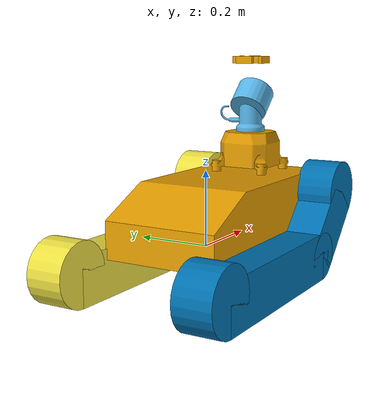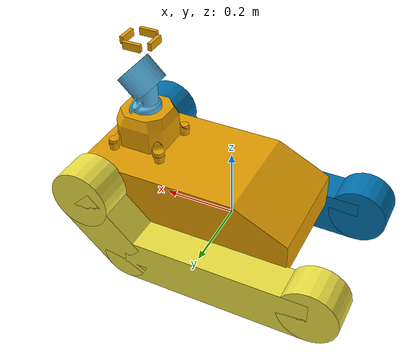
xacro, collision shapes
<?xml version='1.0' encoding='utf-8'?>
<robot name='csiro_data61_dtr_sensor_config_1' xmlns:xacro='http://ros.org/wiki/xacro'>
  <xacro:arg name="name" default="csiro_data61_dtr_sensor_config_1"/>
  <xacro:property name="robot_namespace" value="$(arg name)"/>
  <link name='${robot_namespace}/base_link'>
    <inertial>
      <origin xyz='0.074656 0 0.092426' rpy='0 -0 0'/>
      <mass value='16.1585'/>
      <inertia ixx='0.2409' ixy='-1.38499e-06' ixz='-0.0277823' iyy='0.623647' iyz='0' izz='0.605949'/>
    </inertial>
    <collision name='base_link_fixed_joint_lump__nav_base_link_collision'>
      <origin xyz='0.25 0 0.24' rpy='0 -0 0'/>
      <geometry>
        <mesh filename='package://csiro_data61_dtr_sensor_config_1/meshes/PPV4_Sim_Base.STL' scale='1 1 1'/>
      </geometry>
    </collision>
    <collision name='base_link_fixed_joint_lump__light0_collision_1'>
      <origin xyz='0.29 0 0.48' rpy='0 -0 0'/>
      <geometry>
        <box size='0.01 0.05 0.02'/>
      </geometry>
    </collision>
    <collision name='base_link_fixed_joint_lump__light1_collision_2'>
      <origin xyz='0.25 0.04 0.48' rpy='0 -0 1.5708'/>
      <geometry>
        <box size='0.01 0.05 0.02'/>
      </geometry>
    </collision>
    <collision name='base_link_fixed_joint_lump__light2_collision_3'>
      <origin xyz='0.21 0 0.48' rpy='0 -0 3.14'/>
      <geometry>
        <box size='0.01 0.05 0.02'/>
      </geometry>
    </collision>
    <collision name='base_link_fixed_joint_lump__light3_collision_4'>
      <origin xyz='0.25 -0.04 0.48' rpy='0 0 -1.5708'/>
      <geometry>
        <box size='0.01 0.05 0.02'/>
      </geometry>
    </collision>
    <collision name='base_link_fixed_joint_lump__pumpkin_chassis_collision_5'>
      <origin xyz='0 0 0' rpy='0 -0 0'/>
      <geometry>
        <mesh filename='package://csiro_data61_dtr_sensor_config_1/meshes/base_link_collision_body.STL' scale='1 1 1'/>
      </geometry>
    </collision>
    <collision name='base_link_fixed_joint_lump__pumpkin_track_visual_collision_6'>
      <origin xyz='0 0 0' rpy='0 -0 0'/>
      <geometry>
        <sphere radius='0.02'/>
      </geometry>
    </collision>
    <visual name='base_link_fixed_joint_lump__nav_base_link_visual'>
      <origin xyz='0.25 0 0.24' rpy='0 -0 0'/>
      <geometry>
        <mesh filename='package://csiro_data61_dtr_sensor_config_1/meshes/PPV4_Sim_Base.STL' scale='1 1 1'/>
      </geometry>
    </visual>
    <visual name='base_link_fixed_joint_lump__light0_visual_1'>
      <origin xyz='0.29 0 0.48' rpy='0 -0 0'/>
      <geometry>
        <box size='0.01 0.05 0.02'/>
      </geometry>
    </visual>
    <visual name='base_link_fixed_joint_lump__light1_visual_2'>
      <origin xyz='0.25 0.04 0.48' rpy='0 -0 1.5708'/>
      <geometry>
        <box size='0.01 0.05 0.02'/>
      </geometry>
    </visual>
    <visual name='base_link_fixed_joint_lump__light2_visual_3'>
      <origin xyz='0.21 0 0.48' rpy='0 -0 3.14'/>
      <geometry>
        <box size='0.01 0.05 0.02'/>
      </geometry>
    </visual>
    <visual name='base_link_fixed_joint_lump__light3_visual_4'>
      <origin xyz='0.25 -0.04 0.48' rpy='0 0 -1.5708'/>
      <geometry>
        <box size='0.01 0.05 0.02'/>
      </geometry>
    </visual>
    <visual name='base_link_fixed_joint_lump__pumpkin_chassis_visual_5'>
      <origin xyz='0 0 0' rpy='0 -0 0'/>
      <geometry>
        <mesh filename='package://csiro_data61_dtr_sensor_config_1/meshes/base_link_collision_body.STL' scale='1 1 1'/>
      </geometry>
    </visual>
    <visual name='base_link_fixed_joint_lump__pumpkin_track_visual_visual_6'>
      <origin xyz='0 0 0' rpy='0 -0 0'/>
      <geometry>
        <mesh filename='package://csiro_data61_dtr_sensor_config_1/meshes/track_assembly_left.STL' scale='1 1 1'/>
      </geometry>
    </visual>
    <visual name='base_link_fixed_joint_lump__pumpkin_track_visual_visual_7'>
      <origin xyz='0 0 0' rpy='0 -0 0'/>
      <geometry>
        <mesh filename='package://csiro_data61_dtr_sensor_config_1/meshes/track_assembly_right.STL' scale='1 1 1'/>
      </geometry>
    </visual>
  </link>
  <link name='${robot_namespace}/encoder_rotating_link'>
    <inertial>
      <origin xyz='0.004659 0 0.061904' rpy='0 -0 0'/>
      <mass value='1.328'/>
      <inertia ixx='0.00515062' ixy='-8.36136e-15' ixz='-0.000124068' iyy='0.00506893' iyz='1.36976e-13' izz='0.00258497'/>
    </inertial>
    <collision name='encoder_rotating_link_collision'>
      <origin xyz='0 0 0' rpy='0 -0 0'/>
      <geometry>
        <mesh filename='package://csiro_data61_dtr_sensor_config_1/meshes/PPV4_Sim_Laser_Assembly.STL' scale='1 1 1'/>
      </geometry>
    </collision>
    <collision name='encoder_rotating_link_fixed_joint_lump__nav_velodyne_base_link_collision_1'>
      <origin xyz='0.00735 0 0.097852' rpy='-0.785398 0 -1.5708'/>
      <geometry>
        <cylinder radius='0.0516' length='0.0717'/>
      </geometry>
    </collision>
    <visual name='encoder_rotating_link_visual'>
      <origin xyz='0 0 0' rpy='0 -0 0'/>
      <geometry>
        <mesh filename='package://csiro_data61_dtr_sensor_config_1/meshes/PPV4_Sim_Laser_Assembly.STL' scale='1 1 1'/>
      </geometry>
    </visual>
    <visual name='encoder_rotating_link_fixed_joint_lump__nav_velodyne_base_link_visual_1'>
      <origin xyz='-0.018 0 0.072503' rpy='-0.785398 0 -1.5708'/>
      <geometry>
        <mesh filename='package://csiro_data61_dtr_sensor_config_1/meshes/VLP16_base_1.dae' scale='1 1 1'/>
      </geometry>
    </visual>
    <visual name='encoder_rotating_link_fixed_joint_lump__nav_velodyne_base_link_visual_2'>
      <origin xyz='-0.018 0 0.072503' rpy='-0.785398 0 -1.5708'/>
      <geometry>
        <mesh filename='package://csiro_data61_dtr_sensor_config_1/meshes/VLP16_base_2.dae' scale='1 1 1'/>
      </geometry>
    </visual>
    <visual name='encoder_rotating_link_fixed_joint_lump__nav_velodyne_visual_3'>
      <origin xyz='-0.018 0 0.072503' rpy='-0.785398 0 -1.5708'/>
      <geometry>
        <mesh filename='package://csiro_data61_dtr_sensor_config_1/meshes/VLP16_scan.dae' scale='1 1 1'/>
      </geometry>
    </visual>
  </link>
  <link name='${robot_namespace}/nav_imu'>
    <inertial>
      <origin xyz='0.004061 0.003452 0.012413' rpy='0 -0 0'/>
      <mass value='0.3'/>
      <inertia ixx='0.000467046' ixy='-2.1049e-06' ixz='-7.55989e-06' iyy='0.000467732' iyz='-6.42649e-06' izz='0.000874443'/>
    </inertial>
    <collision name='nav_imu_collision'>
      <origin xyz='0 0 0' rpy='0 -0 0'/>
      <geometry>
        <box size='0.01 0.01 0.01'/>
      </geometry>
    </collision>
    <collision name='nav_imu_fixed_joint_lump__camera0_link_collision_1'>
      <origin xyz='0.071718 0.005178 0.01862' rpy='0 -0.261799 0'/>
      <geometry>
        <box size='0.001 0.02 0.02'/>
      </geometry>
    </collision>
    <collision name='nav_imu_fixed_joint_lump__camera1_link_collision_2'>
      <origin xyz='0.006091 0.070805 0.01862' rpy='0 -0.261799 1.5708'/>
      <geometry>
        <box size='0.001 0.02 0.02'/>
      </geometry>
    </collision>
    <collision name='nav_imu_fixed_joint_lump__camera2_link_collision_3'>
      <origin xyz='-0.059536 0.005178 0.01862' rpy='-0 -0.261799 3.14'/>
      <geometry>
        <box size='0.001 0.02 0.02'/>
      </geometry>
    </collision>
    <collision name='nav_imu_fixed_joint_lump__camera3_link_collision_4'>
      <origin xyz='0.006091 -0.06045 0.01862' rpy='0 -0.261799 -1.5708'/>
      <geometry>
        <box size='0.001 0.02 0.02'/>
      </geometry>
    </collision>
    <visual name='nav_imu_visual'>
      <origin xyz='0 0 0' rpy='0 -0 0'/>
      <geometry>
        <box size='0.01 0.01 0.01'/>
      </geometry>
    </visual>
    <visual name='nav_imu_fixed_joint_lump__camera0_link_visual_1'>
      <origin xyz='0.071718 0.005178 0.01862' rpy='0 -0.261799 0'/>
      <geometry>
        <box size='0.001 0.02 0.02'/>
      </geometry>
    </visual>
    <visual name='nav_imu_fixed_joint_lump__camera1_link_visual_2'>
      <origin xyz='0.006091 0.070805 0.01862' rpy='0 -0.261799 1.5708'/>
      <geometry>
        <box size='0.001 0.02 0.02'/>
      </geometry>
    </visual>
    <visual name='nav_imu_fixed_joint_lump__camera2_link_visual_3'>
      <origin xyz='-0.059536 0.005178 0.01862' rpy='-0 -0.261799 3.14'/>
      <geometry>
        <box size='0.001 0.02 0.02'/>
      </geometry>
    </visual>
    <visual name='nav_imu_fixed_joint_lump__camera3_link_visual_4'>
      <origin xyz='0.006091 -0.06045 0.01862' rpy='0 -0.261799 -1.5708'/>
      <geometry>
        <box size='0.001 0.02 0.02'/>
      </geometry>
    </visual>
  </link>
  <link name='${robot_namespace}/left_track'>
    <inertial>
      <origin xyz='0 0 0' rpy='0 -0 0'/>
      <mass value='10'/>
      <inertia ixx='0.04167' ixy='0' ixz='0' iyy='0.3747' iyz='0' izz='0.3500'/>
    </inertial>
    <collision name='left_02_wheel_collision'>
      <origin xyz='0.1975 0 -0.04' rpy='1.5708 -0 0'/>
      <geometry>
        <cylinder radius='0.064' length='0.1'/>
      </geometry>
    </collision>
    <collision name='left_05_wheel_collision'>
      <origin xyz='0.322 0 0.117' rpy='1.5708 -0 0'/>
      <geometry>
        <cylinder radius='0.084' length='0.1'/>
      </geometry>
    </collision>
    <collision name='left_14_wheel_collision'>
      <origin xyz='-0.32 0 -0.02' rpy='1.5708 -0 0'/>
      <geometry>
        <cylinder radius='0.084' length='0.1'/>
      </geometry>
    </collision>
    <collision name='left_bottom_box_collision'>
      <origin xyz='-0.06175 0 -0.04' rpy='0 0 0'/>
      <geometry>
        <box size='0.5175 0.1 0.128'/>
      </geometry>
    </collision>
    <collision name='left_front_box_collision'>
      <origin xyz='0.267 0 0.0322' rpy='0 -0.8011 0'/>
      <geometry>
        <box size='0.20 0.1 0.128'/>
      </geometry>
    </collision>
  </link>
  <joint name='left_track_j' type='fixed'>
    <origin xyz='0 0.2 0' rpy='0 0 0'/>
    <parent link='${robot_namespace}/base_link'/>
    <child link='${robot_namespace}/left_track'/>
  </joint>
  <link name='${robot_namespace}/right_track'>
    <inertial>
      <origin xyz='0 0 0' rpy='0 -0 0'/>
      <mass value='10'/>
      <inertia ixx='0.04167' ixy='0' ixz='0' iyy='0.3747' iyz='0' izz='0.3500'/>
    </inertial>
    <collision name='right_02_wheel_collision'>
      <origin xyz='0.1975 0 -0.04' rpy='1.5708 -0 0'/>
      <geometry>
        <cylinder radius='0.064' length='0.1'/>
      </geometry>
    </collision>
    <collision name='right_05_wheel_collision'>
      <origin xyz='0.322 0 0.117' rpy='1.5708 -0 0'/>
      <geometry>
        <cylinder radius='0.084' length='0.1'/>
      </geometry>
    </collision>
    <collision name='right_14_wheel_collision'>
      <origin xyz='-0.32 0 -0.02' rpy='1.5708 -0 0'/>
      <geometry>
        <cylinder radius='0.084' length='0.1'/>
      </geometry>
    </collision>
    <collision name='right_bottom_box_collision'>
      <origin xyz='-0.06175 0 -0.04' rpy='0 0 0'/>
      <geometry>
        <box size='0.5175 0.1 0.128'/>
      </geometry>
    </collision>
    <collision name='right_front_box_collision'>
      <origin xyz='0.267 0 0.0322' rpy='0 -0.8011 0'/>
      <geometry>
        <box size='0.20 0.1 0.128'/>
      </geometry>
    </collision>
  </link>
  <joint name='right_track_j' type='fixed'>
    <origin xyz='0 -0.2 0' rpy='0 0 0'/>
    <parent link='${robot_namespace}/base_link'/>
    <child link='${robot_namespace}/right_track'/>
  </joint>
  <joint name='lidar_gimbal' type='revolute'>
    <origin xyz='0.25 0 0.270797' rpy='0 -0 0'/>
    <parent link='${robot_namespace}/base_link'/>
    <child link='${robot_namespace}/encoder_rotating_link'/>
    <dynamics damping='0' friction='0' />
    <axis xyz='0 0 1'/>
    <limit lower='-1e+16' upper='1e+16' effort='-1' velocity='3.14159'/>
  </joint>
  <joint name='nav_base_link_to_imu' type='revolute'>
    <origin xyz='0.243909 -0.005178 0.24' rpy='0 -0 0'/>
    <parent link='${robot_namespace}/base_link'/>
    <child link='${robot_namespace}/nav_imu'/>
    <dynamics damping='0' friction='0' />
    <axis xyz='1 0 0'/>
    <limit lower='0' upper='0' effort='0' velocity='0'/>
  </joint>
</robot>
